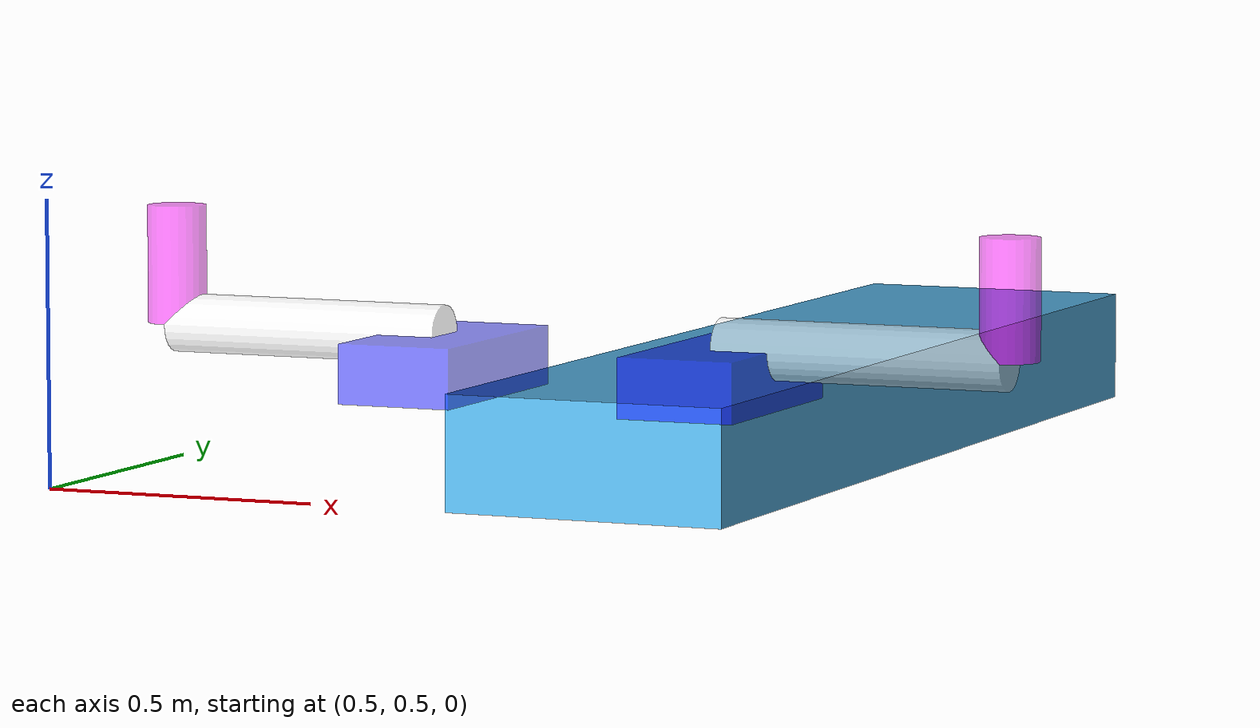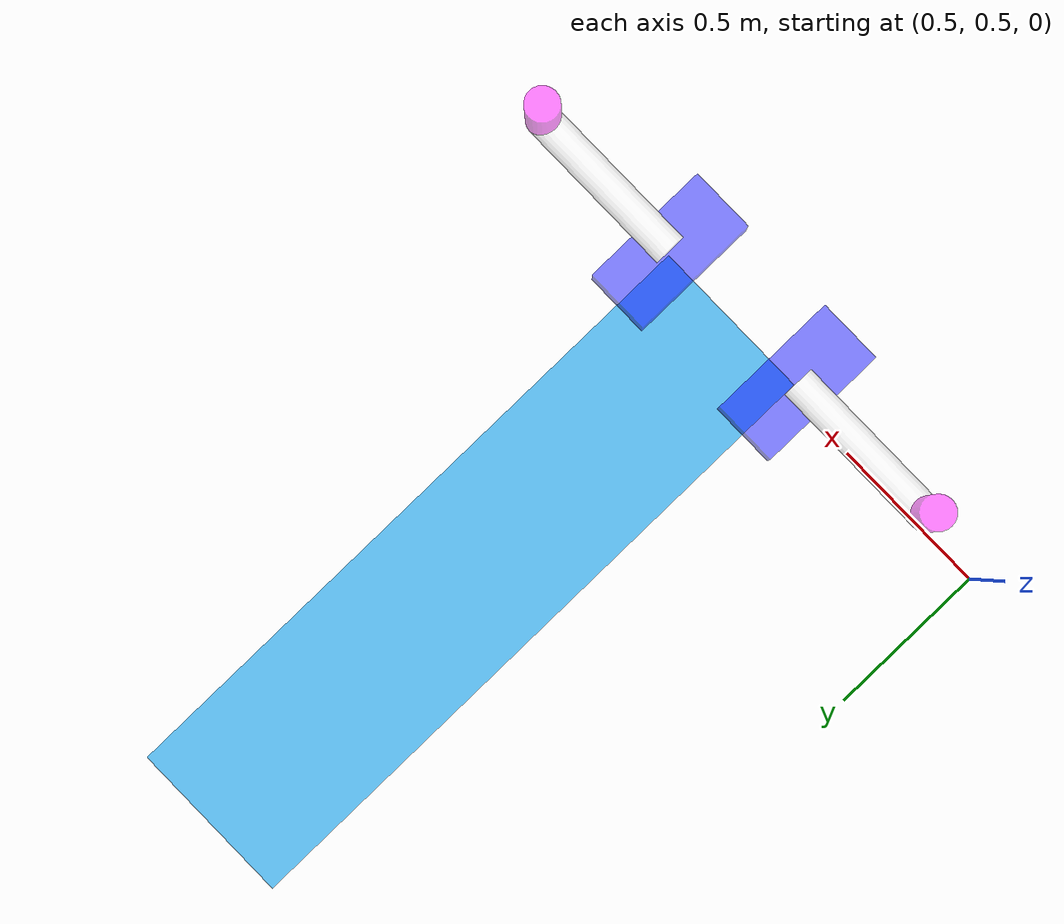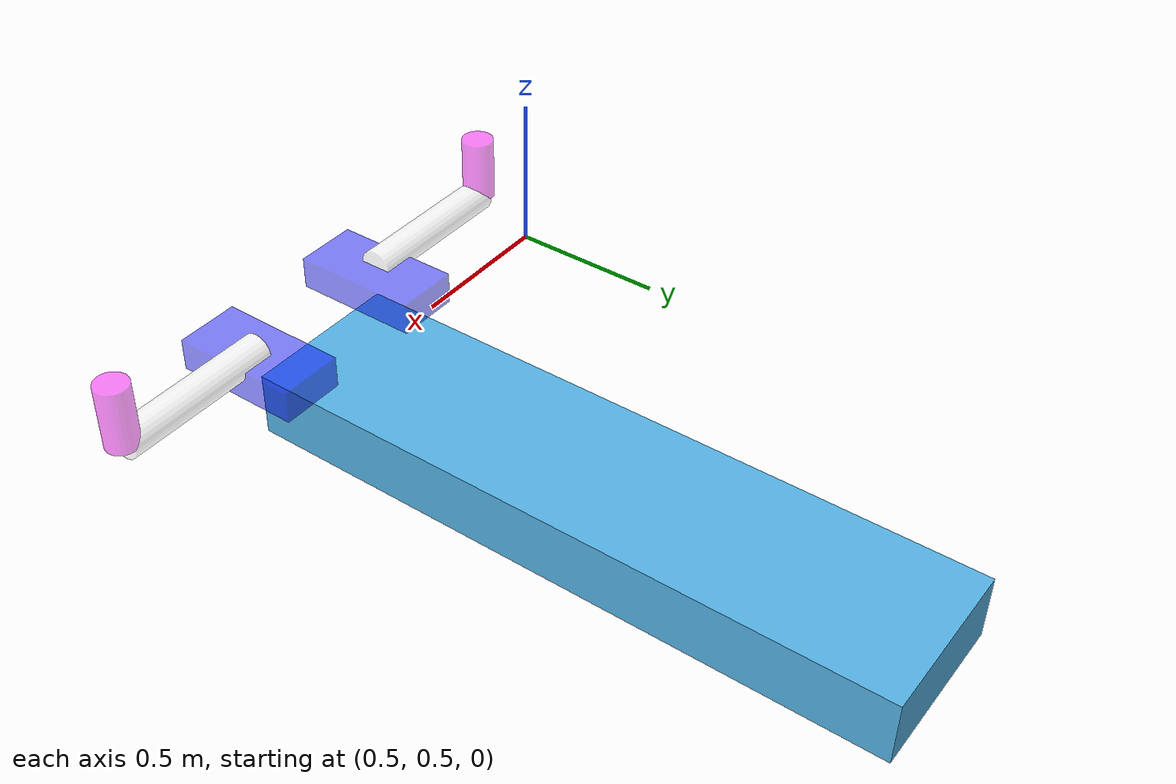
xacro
<?xml version="1.0"?>
<robot name="myfirst" xmlns:xacro="http://www.ros.org/wiki/xacro">
    <xacro:include filename="wings.xacro"/>

    <link name="world"/>

    <joint name="base_joint" type="fixed">
        <parent link="world"/>
        <child link="base_link"/>
        <origin xyz="1.5 0.5 0.1"/>
    </joint>

    <link name="base_link">
        <visual>
            <origin xyz="0 1 0" rpy="0 0 0"/>
            <geometry>
                <box size="0.5 2 0.2"/>
            </geometry>
        </visual>
        <collision>
            <origin xyz="0 1 0" rpy="0 0 0"/>
            <geometry>
                <box size="0.5 2 0.2"/>
            </geometry>
        </collision>
        <inertial>
            <origin xyz="0 1 0" rpy="0 0 0"/>
            <mass value="2"/>
            <inertia ixx="0.6733" ixy="0.0" ixz="0.0" iyy="0.04833" iyz="0.0" izz="0.7083"/>
        </inertial>
    </link>

    <xacro:rotating_arm_part side="right" parent="base_link" reflect="-1"/>
    <xacro:rotating_arm_part side="left" parent="base_link" reflect="1"/>
    <!--file that includes the ros controllers -->
    <xacro:include filename="controller.xacro"/>
</robot>

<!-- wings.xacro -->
<robot xmlns:xacro="http://www.ros.org/wiki/xacro">
    <xacro:macro name="rotating_arm_part" params="side parent reflect">
    <joint name="${side}_slider_joint" type="prismatic">
        <origin xyz="${reflect * 0.25} 0 0.1" rpy="0 0 0"/>
        <parent link="${parent}"/>
        <child link="${side}_slider_link"/>
        <axis xyz="0 1 0"/>
        <limit upper="2" lower="0" effort="100.0" velocity="10.0"/>
    </joint>

    <link name="${side}_slider_link">
        <visual>
            <origin xyz="0 0 0.05" rpy="0 0 0"/>
            <geometry>
                <box size="0.2 0.4 0.1"/>
            </geometry>
            <material name="blue">
                <color rgba="0 0 1 0.5"/>
            </material>
        </visual>
        <collision>
            <origin xyz="0 0 0.05" rpy="0 0 0"/>
            <geometry>
                <box size="0.2 0.4 0.1"/>
            </geometry>
        </collision>
        <inertial>
            <origin xyz="0 0 0.05" rpy="0 0 0"/>
            <mass value="0.5"/>
            <inertia ixx="0.007083" ixy="0.0" ixz="0.0" iyy="0.0020833" iyz="0.0" izz="0.008333"/>
        </inertial>
    </link>

    <joint name="${side}_rotating_arm_joint" type="revolute">
        <origin xyz="${reflect * 0.25} 0 0.1" rpy="0 ${pi/2} 0"/>
        <parent link="${side}_slider_link"/>
        <child link="${side}_rotating_arm_link"/>
        <axis xyz="0 0 1"/>
        <limit effort="100.0" upper="${pi/2}" lower="${-pi/2}" velocity="${pi/4}"/>
    </joint>

    <link name="${side}_rotating_arm_link">
        <visual>
            <origin xyz="0 0 0" rpy="0 0 0"/>
            <geometry>
                <cylinder radius="0.05" length="0.5"/>
            </geometry>
            <material name="white">
                <color rgba="1 1 1 0.5"/>
            </material>
        </visual>
        <collision>
            <origin xyz="0 0 0" rpy="0 0 0"/>
            <geometry>
                <cylinder radius="0.05" length="0.5"/>
            </geometry>
        </collision>
        <inertial>
            <origin xyz="0 0 0" rpy="0 0 0"/>
            <mass value="0.5"/>
            <inertia ixx="0.01073" ixy="0.0" ixz="0.0" iyy="0.01073" iyz="0.0" izz="0.000625"/>
        </inertial>
    </link>

    <joint name="${side}_gripper_arm_support_joint" type="fixed">
        <origin xyz="0 0 ${reflect * 0.25}" rpy="0 -${pi/2} 0"/>
        <parent link="${side}_rotating_arm_link"/>
        <child link="${side}_gripper_arm_support_link"/>
    </joint>

    <link name="${side}_gripper_arm_support_link">
        <visual>
            <origin xyz="0 0 0.1" rpy="0 0 0"/>
            <geometry>
                <cylinder radius="0.05" length="0.2"/>
            </geometry>
            <material name="purple">
                <color rgba="1 0 1 0.5"/>
            </material>
        </visual>
        <collision>
            <origin xyz="0 0 0.1" rpy="0 0 0"/>
            <geometry>
                <cylinder radius="0.05" length="0.2"/>
            </geometry>
        </collision>
        <inertial>
            <origin xyz="0 0 0.1" rpy="0 0 0"/>
            <mass value="0.2"/>
            <inertia ixx="0.001979" ixy="0.0" ixz="0.0" iyy="0.001979" iyz="0.0" izz="0.001"/>
        </inertial>
    </link>
    </xacro:macro>
</robot>
